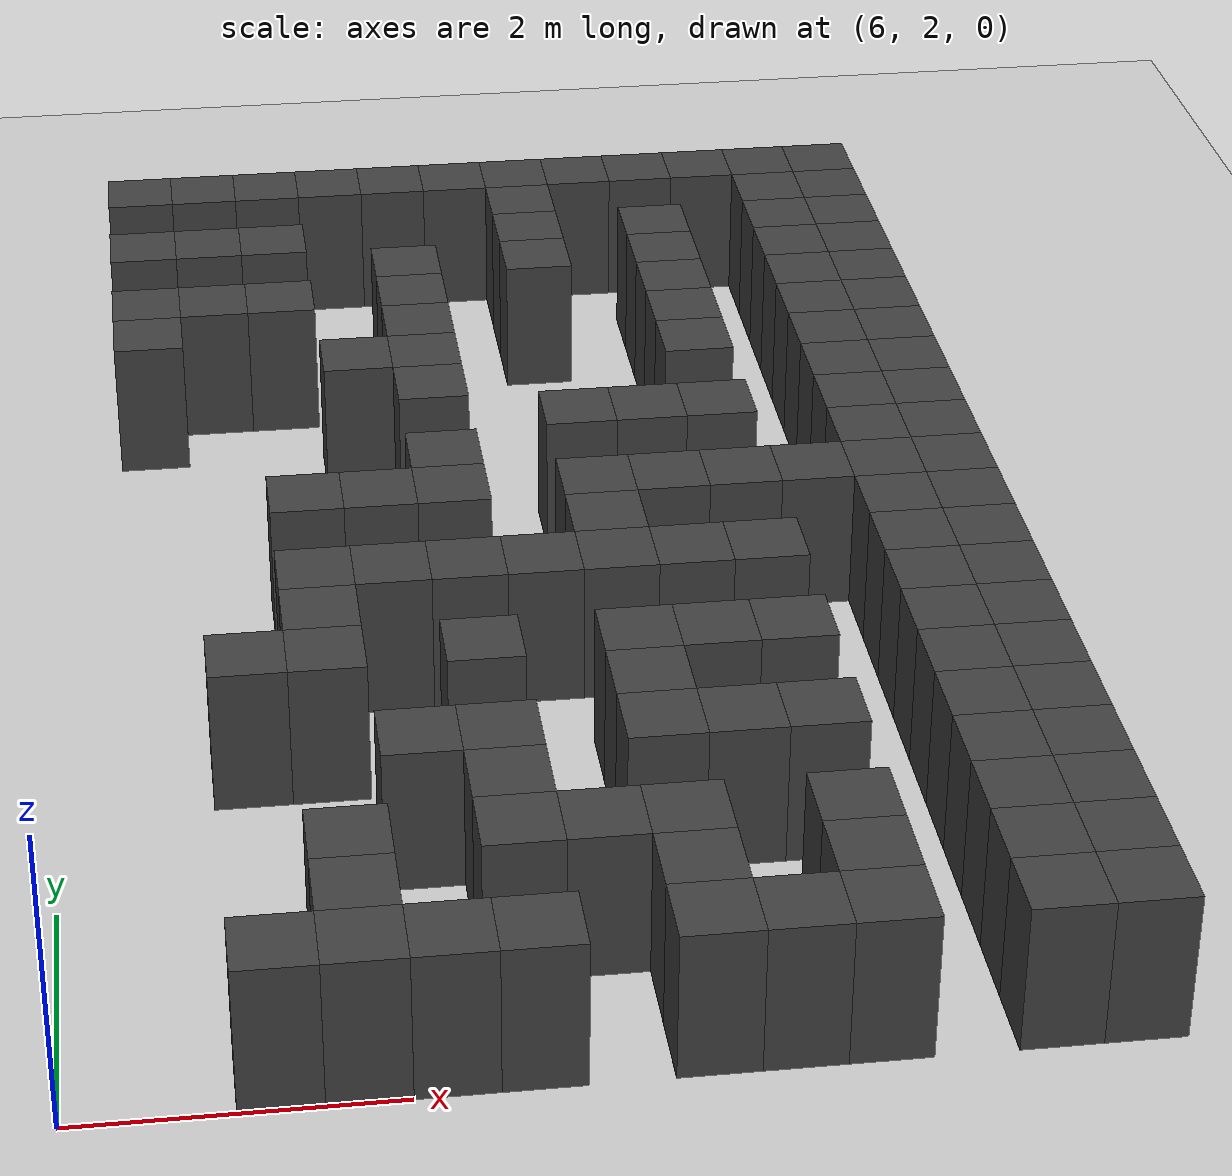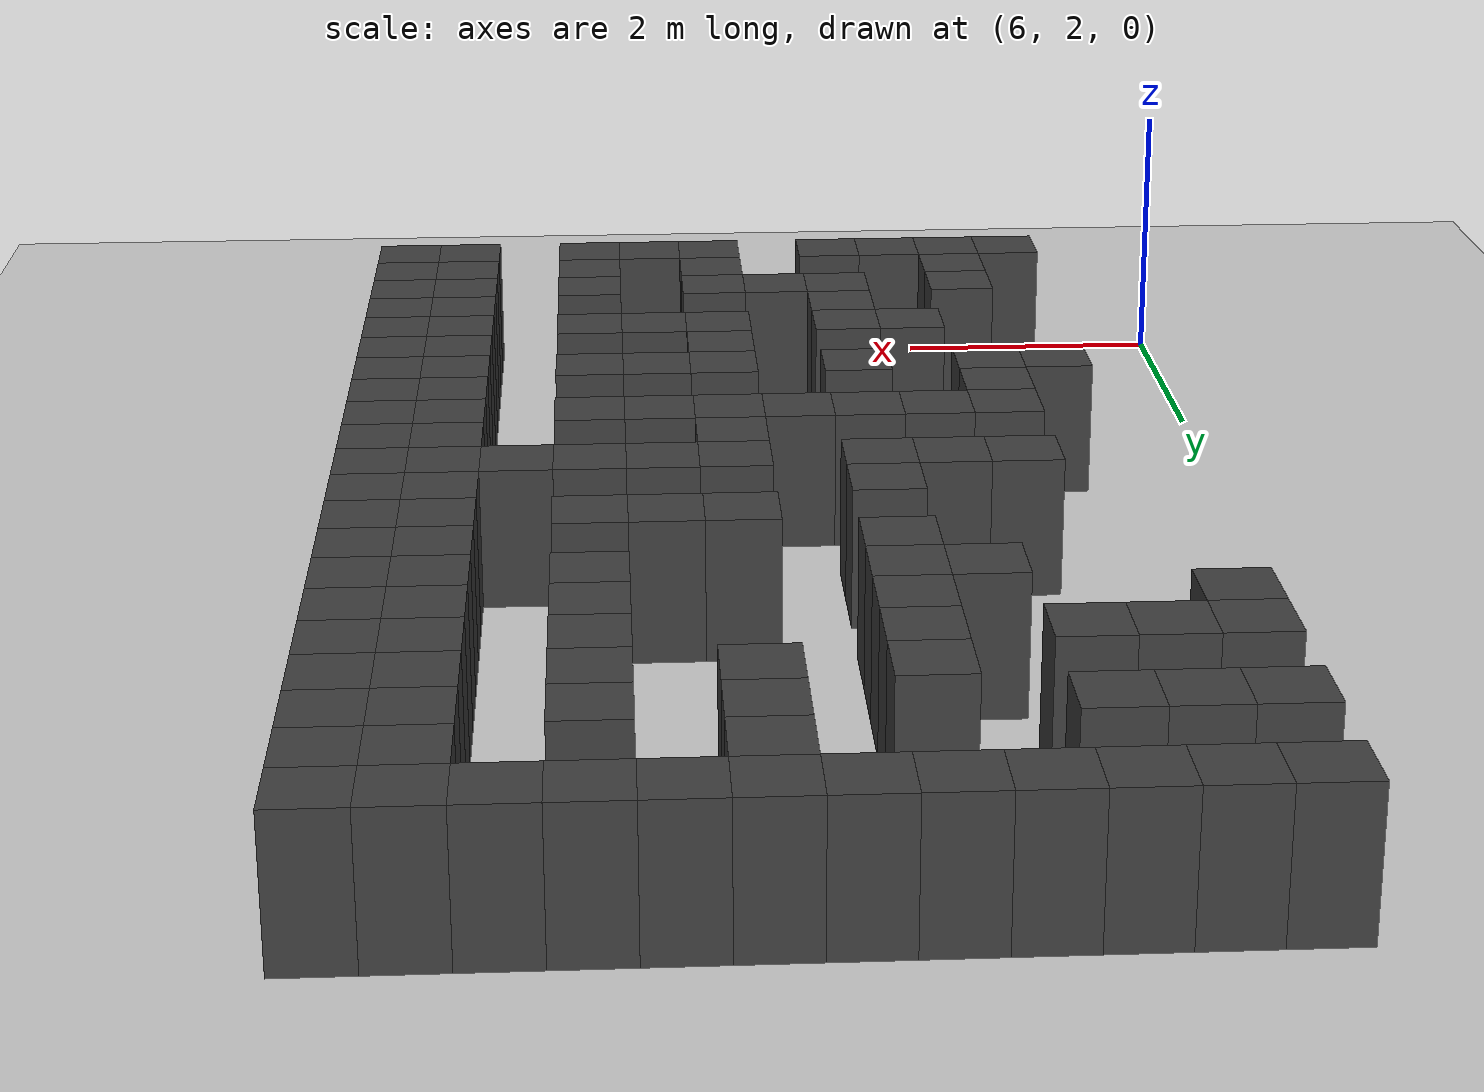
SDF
<sdf version="1.7">
 <world name="map_15497">
  <model name="ground_plane">
   <static>true</static>
   <link name="link">
    <collision name="collision">
     <geometry><plane><normal>0 0 1</normal><size>200 200</size></plane></geometry>
    </collision>
    <visual name="visual">
     <geometry><plane><normal>0 0 1</normal><size>200 200</size></plane></geometry>
     <material><ambient>0.8 0.8 0.8 1</ambient><diffuse>0.8 0.8 0.8 1</diffuse></material>
    </visual>
   </link>
  </model>
  <model name="maze_environment">
   <static>true</static>
   <link name="wall_38">
    <pose>6.750 12.250 0.500 0 0 0</pose>
    <collision name="col"><geometry><box><size>0.5 0.5 1.0</size></box></geometry></collision>
    <visual name="vis">
     <geometry><box><size>0.5 0.5 1.0</size></box></geometry>
     <material><ambient>0.15 0.15 0.15 1</ambient><diffuse>0.25 0.25 0.25 1</diffuse></material>
    </visual>
   </link>
   <link name="wall_39">
    <pose>7.250 12.250 0.500 0 0 0</pose>
    <collision name="col"><geometry><box><size>0.5 0.5 1.0</size></box></geometry></collision>
    <visual name="vis">
     <geometry><box><size>0.5 0.5 1.0</size></box></geometry>
     <material><ambient>0.15 0.15 0.15 1</ambient><diffuse>0.25 0.25 0.25 1</diffuse></material>
    </visual>
   </link>
   <link name="wall_40">
    <pose>7.750 12.250 0.500 0 0 0</pose>
    <collision name="col"><geometry><box><size>0.5 0.5 1.0</size></box></geometry></collision>
    <visual name="vis">
     <geometry><box><size>0.5 0.5 1.0</size></box></geometry>
     <material><ambient>0.15 0.15 0.15 1</ambient><diffuse>0.25 0.25 0.25 1</diffuse></material>
    </visual>
   </link>
   <link name="wall_41">
    <pose>8.250 12.250 0.500 0 0 0</pose>
    <collision name="col"><geometry><box><size>0.5 0.5 1.0</size></box></geometry></collision>
    <visual name="vis">
     <geometry><box><size>0.5 0.5 1.0</size></box></geometry>
     <material><ambient>0.15 0.15 0.15 1</ambient><diffuse>0.25 0.25 0.25 1</diffuse></material>
    </visual>
   </link>
   <link name="wall_42">
    <pose>8.750 12.250 0.500 0 0 0</pose>
    <collision name="col"><geometry><box><size>0.5 0.5 1.0</size></box></geometry></collision>
    <visual name="vis">
     <geometry><box><size>0.5 0.5 1.0</size></box></geometry>
     <material><ambient>0.15 0.15 0.15 1</ambient><diffuse>0.25 0.25 0.25 1</diffuse></material>
    </visual>
   </link>
   <link name="wall_43">
    <pose>9.250 12.250 0.500 0 0 0</pose>
    <collision name="col"><geometry><box><size>0.5 0.5 1.0</size></box></geometry></collision>
    <visual name="vis">
     <geometry><box><size>0.5 0.5 1.0</size></box></geometry>
     <material><ambient>0.15 0.15 0.15 1</ambient><diffuse>0.25 0.25 0.25 1</diffuse></material>
    </visual>
   </link>
   <link name="wall_44">
    <pose>9.750 12.250 0.500 0 0 0</pose>
    <collision name="col"><geometry><box><size>0.5 0.5 1.0</size></box></geometry></collision>
    <visual name="vis">
     <geometry><box><size>0.5 0.5 1.0</size></box></geometry>
     <material><ambient>0.15 0.15 0.15 1</ambient><diffuse>0.25 0.25 0.25 1</diffuse></material>
    </visual>
   </link>
   <link name="wall_45">
    <pose>10.250 12.250 0.500 0 0 0</pose>
    <collision name="col"><geometry><box><size>0.5 0.5 1.0</size></box></geometry></collision>
    <visual name="vis">
     <geometry><box><size>0.5 0.5 1.0</size></box></geometry>
     <material><ambient>0.15 0.15 0.15 1</ambient><diffuse>0.25 0.25 0.25 1</diffuse></material>
    </visual>
   </link>
   <link name="wall_46">
    <pose>10.750 12.250 0.500 0 0 0</pose>
    <collision name="col"><geometry><box><size>0.5 0.5 1.0</size></box></geometry></collision>
    <visual name="vis">
     <geometry><box><size>0.5 0.5 1.0</size></box></geometry>
     <material><ambient>0.15 0.15 0.15 1</ambient><diffuse>0.25 0.25 0.25 1</diffuse></material>
    </visual>
   </link>
   <link name="wall_47">
    <pose>11.250 12.250 0.500 0 0 0</pose>
    <collision name="col"><geometry><box><size>0.5 0.5 1.0</size></box></geometry></collision>
    <visual name="vis">
     <geometry><box><size>0.5 0.5 1.0</size></box></geometry>
     <material><ambient>0.15 0.15 0.15 1</ambient><diffuse>0.25 0.25 0.25 1</diffuse></material>
    </visual>
   </link>
   <link name="wall_48">
    <pose>11.750 12.250 0.500 0 0 0</pose>
    <collision name="col"><geometry><box><size>0.5 0.5 1.0</size></box></geometry></collision>
    <visual name="vis">
     <geometry><box><size>0.5 0.5 1.0</size></box></geometry>
     <material><ambient>0.15 0.15 0.15 1</ambient><diffuse>0.25 0.25 0.25 1</diffuse></material>
    </visual>
   </link>
   <link name="wall_49">
    <pose>12.250 12.250 0.500 0 0 0</pose>
    <collision name="col"><geometry><box><size>0.5 0.5 1.0</size></box></geometry></collision>
    <visual name="vis">
     <geometry><box><size>0.5 0.5 1.0</size></box></geometry>
     <material><ambient>0.15 0.15 0.15 1</ambient><diffuse>0.25 0.25 0.25 1</diffuse></material>
    </visual>
   </link>
   <link name="wall_56">
    <pose>9.750 11.750 0.500 0 0 0</pose>
    <collision name="col"><geometry><box><size>0.5 0.5 1.0</size></box></geometry></collision>
    <visual name="vis">
     <geometry><box><size>0.5 0.5 1.0</size></box></geometry>
     <material><ambient>0.15 0.15 0.15 1</ambient><diffuse>0.25 0.25 0.25 1</diffuse></material>
    </visual>
   </link>
   <link name="wall_57">
    <pose>11.750 11.750 0.500 0 0 0</pose>
    <collision name="col"><geometry><box><size>0.5 0.5 1.0</size></box></geometry></collision>
    <visual name="vis">
     <geometry><box><size>0.5 0.5 1.0</size></box></geometry>
     <material><ambient>0.15 0.15 0.15 1</ambient><diffuse>0.25 0.25 0.25 1</diffuse></material>
    </visual>
   </link>
   <link name="wall_58">
    <pose>12.250 11.750 0.500 0 0 0</pose>
    <collision name="col"><geometry><box><size>0.5 0.5 1.0</size></box></geometry></collision>
    <visual name="vis">
     <geometry><box><size>0.5 0.5 1.0</size></box></geometry>
     <material><ambient>0.15 0.15 0.15 1</ambient><diffuse>0.25 0.25 0.25 1</diffuse></material>
    </visual>
   </link>
   <link name="wall_84">
    <pose>6.750 11.250 0.500 0 0 0</pose>
    <collision name="col"><geometry><box><size>0.5 0.5 1.0</size></box></geometry></collision>
    <visual name="vis">
     <geometry><box><size>0.5 0.5 1.0</size></box></geometry>
     <material><ambient>0.15 0.15 0.15 1</ambient><diffuse>0.25 0.25 0.25 1</diffuse></material>
    </visual>
   </link>
   <link name="wall_85">
    <pose>7.250 11.250 0.500 0 0 0</pose>
    <collision name="col"><geometry><box><size>0.5 0.5 1.0</size></box></geometry></collision>
    <visual name="vis">
     <geometry><box><size>0.5 0.5 1.0</size></box></geometry>
     <material><ambient>0.15 0.15 0.15 1</ambient><diffuse>0.25 0.25 0.25 1</diffuse></material>
    </visual>
   </link>
   <link name="wall_86">
    <pose>7.750 11.250 0.500 0 0 0</pose>
    <collision name="col"><geometry><box><size>0.5 0.5 1.0</size></box></geometry></collision>
    <visual name="vis">
     <geometry><box><size>0.5 0.5 1.0</size></box></geometry>
     <material><ambient>0.15 0.15 0.15 1</ambient><diffuse>0.25 0.25 0.25 1</diffuse></material>
    </visual>
   </link>
   <link name="wall_87">
    <pose>9.750 11.250 0.500 0 0 0</pose>
    <collision name="col"><geometry><box><size>0.5 0.5 1.0</size></box></geometry></collision>
    <visual name="vis">
     <geometry><box><size>0.5 0.5 1.0</size></box></geometry>
     <material><ambient>0.15 0.15 0.15 1</ambient><diffuse>0.25 0.25 0.25 1</diffuse></material>
    </visual>
   </link>
   <link name="wall_88">
    <pose>10.750 11.250 0.500 0 0 0</pose>
    <collision name="col"><geometry><box><size>0.5 0.5 1.0</size></box></geometry></collision>
    <visual name="vis">
     <geometry><box><size>0.5 0.5 1.0</size></box></geometry>
     <material><ambient>0.15 0.15 0.15 1</ambient><diffuse>0.25 0.25 0.25 1</diffuse></material>
    </visual>
   </link>
   <link name="wall_89">
    <pose>11.750 11.250 0.500 0 0 0</pose>
    <collision name="col"><geometry><box><size>0.5 0.5 1.0</size></box></geometry></collision>
    <visual name="vis">
     <geometry><box><size>0.5 0.5 1.0</size></box></geometry>
     <material><ambient>0.15 0.15 0.15 1</ambient><diffuse>0.25 0.25 0.25 1</diffuse></material>
    </visual>
   </link>
   <link name="wall_90">
    <pose>12.250 11.250 0.500 0 0 0</pose>
    <collision name="col"><geometry><box><size>0.5 0.5 1.0</size></box></geometry></collision>
    <visual name="vis">
     <geometry><box><size>0.5 0.5 1.0</size></box></geometry>
     <material><ambient>0.15 0.15 0.15 1</ambient><diffuse>0.25 0.25 0.25 1</diffuse></material>
    </visual>
   </link>
   <link name="wall_100">
    <pose>8.750 10.750 0.500 0 0 0</pose>
    <collision name="col"><geometry><box><size>0.5 0.5 1.0</size></box></geometry></collision>
    <visual name="vis">
     <geometry><box><size>0.5 0.5 1.0</size></box></geometry>
     <material><ambient>0.15 0.15 0.15 1</ambient><diffuse>0.25 0.25 0.25 1</diffuse></material>
    </visual>
   </link>
   <link name="wall_101">
    <pose>9.750 10.750 0.500 0 0 0</pose>
    <collision name="col"><geometry><box><size>0.5 0.5 1.0</size></box></geometry></collision>
    <visual name="vis">
     <geometry><box><size>0.5 0.5 1.0</size></box></geometry>
     <material><ambient>0.15 0.15 0.15 1</ambient><diffuse>0.25 0.25 0.25 1</diffuse></material>
    </visual>
   </link>
   <link name="wall_102">
    <pose>10.750 10.750 0.500 0 0 0</pose>
    <collision name="col"><geometry><box><size>0.5 0.5 1.0</size></box></geometry></collision>
    <visual name="vis">
     <geometry><box><size>0.5 0.5 1.0</size></box></geometry>
     <material><ambient>0.15 0.15 0.15 1</ambient><diffuse>0.25 0.25 0.25 1</diffuse></material>
    </visual>
   </link>
   <link name="wall_103">
    <pose>11.750 10.750 0.500 0 0 0</pose>
    <collision name="col"><geometry><box><size>0.5 0.5 1.0</size></box></geometry></collision>
    <visual name="vis">
     <geometry><box><size>0.5 0.5 1.0</size></box></geometry>
     <material><ambient>0.15 0.15 0.15 1</ambient><diffuse>0.25 0.25 0.25 1</diffuse></material>
    </visual>
   </link>
   <link name="wall_104">
    <pose>12.250 10.750 0.500 0 0 0</pose>
    <collision name="col"><geometry><box><size>0.5 0.5 1.0</size></box></geometry></collision>
    <visual name="vis">
     <geometry><box><size>0.5 0.5 1.0</size></box></geometry>
     <material><ambient>0.15 0.15 0.15 1</ambient><diffuse>0.25 0.25 0.25 1</diffuse></material>
    </visual>
   </link>
   <link name="wall_131">
    <pose>6.750 10.250 0.500 0 0 0</pose>
    <collision name="col"><geometry><box><size>0.5 0.5 1.0</size></box></geometry></collision>
    <visual name="vis">
     <geometry><box><size>0.5 0.5 1.0</size></box></geometry>
     <material><ambient>0.15 0.15 0.15 1</ambient><diffuse>0.25 0.25 0.25 1</diffuse></material>
    </visual>
   </link>
   <link name="wall_132">
    <pose>7.250 10.250 0.500 0 0 0</pose>
    <collision name="col"><geometry><box><size>0.5 0.5 1.0</size></box></geometry></collision>
    <visual name="vis">
     <geometry><box><size>0.5 0.5 1.0</size></box></geometry>
     <material><ambient>0.15 0.15 0.15 1</ambient><diffuse>0.25 0.25 0.25 1</diffuse></material>
    </visual>
   </link>
   <link name="wall_133">
    <pose>7.750 10.250 0.500 0 0 0</pose>
    <collision name="col"><geometry><box><size>0.5 0.5 1.0</size></box></geometry></collision>
    <visual name="vis">
     <geometry><box><size>0.5 0.5 1.0</size></box></geometry>
     <material><ambient>0.15 0.15 0.15 1</ambient><diffuse>0.25 0.25 0.25 1</diffuse></material>
    </visual>
   </link>
   <link name="wall_134">
    <pose>8.750 10.250 0.500 0 0 0</pose>
    <collision name="col"><geometry><box><size>0.5 0.5 1.0</size></box></geometry></collision>
    <visual name="vis">
     <geometry><box><size>0.5 0.5 1.0</size></box></geometry>
     <material><ambient>0.15 0.15 0.15 1</ambient><diffuse>0.25 0.25 0.25 1</diffuse></material>
    </visual>
   </link>
   <link name="wall_135">
    <pose>10.750 10.250 0.500 0 0 0</pose>
    <collision name="col"><geometry><box><size>0.5 0.5 1.0</size></box></geometry></collision>
    <visual name="vis">
     <geometry><box><size>0.5 0.5 1.0</size></box></geometry>
     <material><ambient>0.15 0.15 0.15 1</ambient><diffuse>0.25 0.25 0.25 1</diffuse></material>
    </visual>
   </link>
   <link name="wall_136">
    <pose>11.750 10.250 0.500 0 0 0</pose>
    <collision name="col"><geometry><box><size>0.5 0.5 1.0</size></box></geometry></collision>
    <visual name="vis">
     <geometry><box><size>0.5 0.5 1.0</size></box></geometry>
     <material><ambient>0.15 0.15 0.15 1</ambient><diffuse>0.25 0.25 0.25 1</diffuse></material>
    </visual>
   </link>
   <link name="wall_137">
    <pose>12.250 10.250 0.500 0 0 0</pose>
    <collision name="col"><geometry><box><size>0.5 0.5 1.0</size></box></geometry></collision>
    <visual name="vis">
     <geometry><box><size>0.5 0.5 1.0</size></box></geometry>
     <material><ambient>0.15 0.15 0.15 1</ambient><diffuse>0.25 0.25 0.25 1</diffuse></material>
    </visual>
   </link>
   <link name="wall_145">
    <pose>6.750 9.750 0.500 0 0 0</pose>
    <collision name="col"><geometry><box><size>0.5 0.5 1.0</size></box></geometry></collision>
    <visual name="vis">
     <geometry><box><size>0.5 0.5 1.0</size></box></geometry>
     <material><ambient>0.15 0.15 0.15 1</ambient><diffuse>0.25 0.25 0.25 1</diffuse></material>
    </visual>
   </link>
   <link name="wall_146">
    <pose>8.750 9.750 0.500 0 0 0</pose>
    <collision name="col"><geometry><box><size>0.5 0.5 1.0</size></box></geometry></collision>
    <visual name="vis">
     <geometry><box><size>0.5 0.5 1.0</size></box></geometry>
     <material><ambient>0.15 0.15 0.15 1</ambient><diffuse>0.25 0.25 0.25 1</diffuse></material>
    </visual>
   </link>
   <link name="wall_147">
    <pose>10.750 9.750 0.500 0 0 0</pose>
    <collision name="col"><geometry><box><size>0.5 0.5 1.0</size></box></geometry></collision>
    <visual name="vis">
     <geometry><box><size>0.5 0.5 1.0</size></box></geometry>
     <material><ambient>0.15 0.15 0.15 1</ambient><diffuse>0.25 0.25 0.25 1</diffuse></material>
    </visual>
   </link>
   <link name="wall_148">
    <pose>11.750 9.750 0.500 0 0 0</pose>
    <collision name="col"><geometry><box><size>0.5 0.5 1.0</size></box></geometry></collision>
    <visual name="vis">
     <geometry><box><size>0.5 0.5 1.0</size></box></geometry>
     <material><ambient>0.15 0.15 0.15 1</ambient><diffuse>0.25 0.25 0.25 1</diffuse></material>
    </visual>
   </link>
   <link name="wall_149">
    <pose>12.250 9.750 0.500 0 0 0</pose>
    <collision name="col"><geometry><box><size>0.5 0.5 1.0</size></box></geometry></collision>
    <visual name="vis">
     <geometry><box><size>0.5 0.5 1.0</size></box></geometry>
     <material><ambient>0.15 0.15 0.15 1</ambient><diffuse>0.25 0.25 0.25 1</diffuse></material>
    </visual>
   </link>
   <link name="wall_178">
    <pose>8.250 9.250 0.500 0 0 0</pose>
    <collision name="col"><geometry><box><size>0.5 0.5 1.0</size></box></geometry></collision>
    <visual name="vis">
     <geometry><box><size>0.5 0.5 1.0</size></box></geometry>
     <material><ambient>0.15 0.15 0.15 1</ambient><diffuse>0.25 0.25 0.25 1</diffuse></material>
    </visual>
   </link>
   <link name="wall_179">
    <pose>8.750 9.250 0.500 0 0 0</pose>
    <collision name="col"><geometry><box><size>0.5 0.5 1.0</size></box></geometry></collision>
    <visual name="vis">
     <geometry><box><size>0.5 0.5 1.0</size></box></geometry>
     <material><ambient>0.15 0.15 0.15 1</ambient><diffuse>0.25 0.25 0.25 1</diffuse></material>
    </visual>
   </link>
   <link name="wall_180">
    <pose>10.750 9.250 0.500 0 0 0</pose>
    <collision name="col"><geometry><box><size>0.5 0.5 1.0</size></box></geometry></collision>
    <visual name="vis">
     <geometry><box><size>0.5 0.5 1.0</size></box></geometry>
     <material><ambient>0.15 0.15 0.15 1</ambient><diffuse>0.25 0.25 0.25 1</diffuse></material>
    </visual>
   </link>
   <link name="wall_181">
    <pose>11.750 9.250 0.500 0 0 0</pose>
    <collision name="col"><geometry><box><size>0.5 0.5 1.0</size></box></geometry></collision>
    <visual name="vis">
     <geometry><box><size>0.5 0.5 1.0</size></box></geometry>
     <material><ambient>0.15 0.15 0.15 1</ambient><diffuse>0.25 0.25 0.25 1</diffuse></material>
    </visual>
   </link>
   <link name="wall_182">
    <pose>12.250 9.250 0.500 0 0 0</pose>
    <collision name="col"><geometry><box><size>0.5 0.5 1.0</size></box></geometry></collision>
    <visual name="vis">
     <geometry><box><size>0.5 0.5 1.0</size></box></geometry>
     <material><ambient>0.15 0.15 0.15 1</ambient><diffuse>0.25 0.25 0.25 1</diffuse></material>
    </visual>
   </link>
   <link name="wall_192">
    <pose>8.750 8.750 0.500 0 0 0</pose>
    <collision name="col"><geometry><box><size>0.5 0.5 1.0</size></box></geometry></collision>
    <visual name="vis">
     <geometry><box><size>0.5 0.5 1.0</size></box></geometry>
     <material><ambient>0.15 0.15 0.15 1</ambient><diffuse>0.25 0.25 0.25 1</diffuse></material>
    </visual>
   </link>
   <link name="wall_193">
    <pose>11.750 8.750 0.500 0 0 0</pose>
    <collision name="col"><geometry><box><size>0.5 0.5 1.0</size></box></geometry></collision>
    <visual name="vis">
     <geometry><box><size>0.5 0.5 1.0</size></box></geometry>
     <material><ambient>0.15 0.15 0.15 1</ambient><diffuse>0.25 0.25 0.25 1</diffuse></material>
    </visual>
   </link>
   <link name="wall_194">
    <pose>12.250 8.750 0.500 0 0 0</pose>
    <collision name="col"><geometry><box><size>0.5 0.5 1.0</size></box></geometry></collision>
    <visual name="vis">
     <geometry><box><size>0.5 0.5 1.0</size></box></geometry>
     <material><ambient>0.15 0.15 0.15 1</ambient><diffuse>0.25 0.25 0.25 1</diffuse></material>
    </visual>
   </link>
   <link name="wall_223">
    <pose>9.750 8.250 0.500 0 0 0</pose>
    <collision name="col"><geometry><box><size>0.5 0.5 1.0</size></box></geometry></collision>
    <visual name="vis">
     <geometry><box><size>0.5 0.5 1.0</size></box></geometry>
     <material><ambient>0.15 0.15 0.15 1</ambient><diffuse>0.25 0.25 0.25 1</diffuse></material>
    </visual>
   </link>
   <link name="wall_224">
    <pose>10.250 8.250 0.500 0 0 0</pose>
    <collision name="col"><geometry><box><size>0.5 0.5 1.0</size></box></geometry></collision>
    <visual name="vis">
     <geometry><box><size>0.5 0.5 1.0</size></box></geometry>
     <material><ambient>0.15 0.15 0.15 1</ambient><diffuse>0.25 0.25 0.25 1</diffuse></material>
    </visual>
   </link>
   <link name="wall_225">
    <pose>10.750 8.250 0.500 0 0 0</pose>
    <collision name="col"><geometry><box><size>0.5 0.5 1.0</size></box></geometry></collision>
    <visual name="vis">
     <geometry><box><size>0.5 0.5 1.0</size></box></geometry>
     <material><ambient>0.15 0.15 0.15 1</ambient><diffuse>0.25 0.25 0.25 1</diffuse></material>
    </visual>
   </link>
   <link name="wall_226">
    <pose>11.750 8.250 0.500 0 0 0</pose>
    <collision name="col"><geometry><box><size>0.5 0.5 1.0</size></box></geometry></collision>
    <visual name="vis">
     <geometry><box><size>0.5 0.5 1.0</size></box></geometry>
     <material><ambient>0.15 0.15 0.15 1</ambient><diffuse>0.25 0.25 0.25 1</diffuse></material>
    </visual>
   </link>
   <link name="wall_227">
    <pose>12.250 8.250 0.500 0 0 0</pose>
    <collision name="col"><geometry><box><size>0.5 0.5 1.0</size></box></geometry></collision>
    <visual name="vis">
     <geometry><box><size>0.5 0.5 1.0</size></box></geometry>
     <material><ambient>0.15 0.15 0.15 1</ambient><diffuse>0.25 0.25 0.25 1</diffuse></material>
    </visual>
   </link>
   <link name="wall_236">
    <pose>8.750 7.750 0.500 0 0 0</pose>
    <collision name="col"><geometry><box><size>0.5 0.5 1.0</size></box></geometry></collision>
    <visual name="vis">
     <geometry><box><size>0.5 0.5 1.0</size></box></geometry>
     <material><ambient>0.15 0.15 0.15 1</ambient><diffuse>0.25 0.25 0.25 1</diffuse></material>
    </visual>
   </link>
   <link name="wall_237">
    <pose>11.750 7.750 0.500 0 0 0</pose>
    <collision name="col"><geometry><box><size>0.5 0.5 1.0</size></box></geometry></collision>
    <visual name="vis">
     <geometry><box><size>0.5 0.5 1.0</size></box></geometry>
     <material><ambient>0.15 0.15 0.15 1</ambient><diffuse>0.25 0.25 0.25 1</diffuse></material>
    </visual>
   </link>
   <link name="wall_238">
    <pose>12.250 7.750 0.500 0 0 0</pose>
    <collision name="col"><geometry><box><size>0.5 0.5 1.0</size></box></geometry></collision>
    <visual name="vis">
     <geometry><box><size>0.5 0.5 1.0</size></box></geometry>
     <material><ambient>0.15 0.15 0.15 1</ambient><diffuse>0.25 0.25 0.25 1</diffuse></material>
    </visual>
   </link>
   <link name="wall_264">
    <pose>7.750 7.250 0.500 0 0 0</pose>
    <collision name="col"><geometry><box><size>0.5 0.5 1.0</size></box></geometry></collision>
    <visual name="vis">
     <geometry><box><size>0.5 0.5 1.0</size></box></geometry>
     <material><ambient>0.15 0.15 0.15 1</ambient><diffuse>0.25 0.25 0.25 1</diffuse></material>
    </visual>
   </link>
   <link name="wall_265">
    <pose>8.250 7.250 0.500 0 0 0</pose>
    <collision name="col"><geometry><box><size>0.5 0.5 1.0</size></box></geometry></collision>
    <visual name="vis">
     <geometry><box><size>0.5 0.5 1.0</size></box></geometry>
     <material><ambient>0.15 0.15 0.15 1</ambient><diffuse>0.25 0.25 0.25 1</diffuse></material>
    </visual>
   </link>
   <link name="wall_266">
    <pose>8.750 7.250 0.500 0 0 0</pose>
    <collision name="col"><geometry><box><size>0.5 0.5 1.0</size></box></geometry></collision>
    <visual name="vis">
     <geometry><box><size>0.5 0.5 1.0</size></box></geometry>
     <material><ambient>0.15 0.15 0.15 1</ambient><diffuse>0.25 0.25 0.25 1</diffuse></material>
    </visual>
   </link>
   <link name="wall_267">
    <pose>9.750 7.250 0.500 0 0 0</pose>
    <collision name="col"><geometry><box><size>0.5 0.5 1.0</size></box></geometry></collision>
    <visual name="vis">
     <geometry><box><size>0.5 0.5 1.0</size></box></geometry>
     <material><ambient>0.15 0.15 0.15 1</ambient><diffuse>0.25 0.25 0.25 1</diffuse></material>
    </visual>
   </link>
   <link name="wall_268">
    <pose>10.250 7.250 0.500 0 0 0</pose>
    <collision name="col"><geometry><box><size>0.5 0.5 1.0</size></box></geometry></collision>
    <visual name="vis">
     <geometry><box><size>0.5 0.5 1.0</size></box></geometry>
     <material><ambient>0.15 0.15 0.15 1</ambient><diffuse>0.25 0.25 0.25 1</diffuse></material>
    </visual>
   </link>
   <link name="wall_269">
    <pose>10.750 7.250 0.500 0 0 0</pose>
    <collision name="col"><geometry><box><size>0.5 0.5 1.0</size></box></geometry></collision>
    <visual name="vis">
     <geometry><box><size>0.5 0.5 1.0</size></box></geometry>
     <material><ambient>0.15 0.15 0.15 1</ambient><diffuse>0.25 0.25 0.25 1</diffuse></material>
    </visual>
   </link>
   <link name="wall_270">
    <pose>11.250 7.250 0.500 0 0 0</pose>
    <collision name="col"><geometry><box><size>0.5 0.5 1.0</size></box></geometry></collision>
    <visual name="vis">
     <geometry><box><size>0.5 0.5 1.0</size></box></geometry>
     <material><ambient>0.15 0.15 0.15 1</ambient><diffuse>0.25 0.25 0.25 1</diffuse></material>
    </visual>
   </link>
   <link name="wall_271">
    <pose>11.750 7.250 0.500 0 0 0</pose>
    <collision name="col"><geometry><box><size>0.5 0.5 1.0</size></box></geometry></collision>
    <visual name="vis">
     <geometry><box><size>0.5 0.5 1.0</size></box></geometry>
     <material><ambient>0.15 0.15 0.15 1</ambient><diffuse>0.25 0.25 0.25 1</diffuse></material>
    </visual>
   </link>
   <link name="wall_272">
    <pose>12.250 7.250 0.500 0 0 0</pose>
    <collision name="col"><geometry><box><size>0.5 0.5 1.0</size></box></geometry></collision>
    <visual name="vis">
     <geometry><box><size>0.5 0.5 1.0</size></box></geometry>
     <material><ambient>0.15 0.15 0.15 1</ambient><diffuse>0.25 0.25 0.25 1</diffuse></material>
    </visual>
   </link>
   <link name="wall_280">
    <pose>9.750 6.750 0.500 0 0 0</pose>
    <collision name="col"><geometry><box><size>0.5 0.5 1.0</size></box></geometry></collision>
    <visual name="vis">
     <geometry><box><size>0.5 0.5 1.0</size></box></geometry>
     <material><ambient>0.15 0.15 0.15 1</ambient><diffuse>0.25 0.25 0.25 1</diffuse></material>
    </visual>
   </link>
   <link name="wall_281">
    <pose>11.750 6.750 0.500 0 0 0</pose>
    <collision name="col"><geometry><box><size>0.5 0.5 1.0</size></box></geometry></collision>
    <visual name="vis">
     <geometry><box><size>0.5 0.5 1.0</size></box></geometry>
     <material><ambient>0.15 0.15 0.15 1</ambient><diffuse>0.25 0.25 0.25 1</diffuse></material>
    </visual>
   </link>
   <link name="wall_282">
    <pose>12.250 6.750 0.500 0 0 0</pose>
    <collision name="col"><geometry><box><size>0.5 0.5 1.0</size></box></geometry></collision>
    <visual name="vis">
     <geometry><box><size>0.5 0.5 1.0</size></box></geometry>
     <material><ambient>0.15 0.15 0.15 1</ambient><diffuse>0.25 0.25 0.25 1</diffuse></material>
    </visual>
   </link>
   <link name="wall_312">
    <pose>7.750 6.250 0.500 0 0 0</pose>
    <collision name="col"><geometry><box><size>0.5 0.5 1.0</size></box></geometry></collision>
    <visual name="vis">
     <geometry><box><size>0.5 0.5 1.0</size></box></geometry>
     <material><ambient>0.15 0.15 0.15 1</ambient><diffuse>0.25 0.25 0.25 1</diffuse></material>
    </visual>
   </link>
   <link name="wall_313">
    <pose>8.250 6.250 0.500 0 0 0</pose>
    <collision name="col"><geometry><box><size>0.5 0.5 1.0</size></box></geometry></collision>
    <visual name="vis">
     <geometry><box><size>0.5 0.5 1.0</size></box></geometry>
     <material><ambient>0.15 0.15 0.15 1</ambient><diffuse>0.25 0.25 0.25 1</diffuse></material>
    </visual>
   </link>
   <link name="wall_314">
    <pose>8.750 6.250 0.500 0 0 0</pose>
    <collision name="col"><geometry><box><size>0.5 0.5 1.0</size></box></geometry></collision>
    <visual name="vis">
     <geometry><box><size>0.5 0.5 1.0</size></box></geometry>
     <material><ambient>0.15 0.15 0.15 1</ambient><diffuse>0.25 0.25 0.25 1</diffuse></material>
    </visual>
   </link>
   <link name="wall_315">
    <pose>9.250 6.250 0.500 0 0 0</pose>
    <collision name="col"><geometry><box><size>0.5 0.5 1.0</size></box></geometry></collision>
    <visual name="vis">
     <geometry><box><size>0.5 0.5 1.0</size></box></geometry>
     <material><ambient>0.15 0.15 0.15 1</ambient><diffuse>0.25 0.25 0.25 1</diffuse></material>
    </visual>
   </link>
   <link name="wall_316">
    <pose>9.750 6.250 0.500 0 0 0</pose>
    <collision name="col"><geometry><box><size>0.5 0.5 1.0</size></box></geometry></collision>
    <visual name="vis">
     <geometry><box><size>0.5 0.5 1.0</size></box></geometry>
     <material><ambient>0.15 0.15 0.15 1</ambient><diffuse>0.25 0.25 0.25 1</diffuse></material>
    </visual>
   </link>
   <link name="wall_317">
    <pose>10.250 6.250 0.500 0 0 0</pose>
    <collision name="col"><geometry><box><size>0.5 0.5 1.0</size></box></geometry></collision>
    <visual name="vis">
     <geometry><box><size>0.5 0.5 1.0</size></box></geometry>
     <material><ambient>0.15 0.15 0.15 1</ambient><diffuse>0.25 0.25 0.25 1</diffuse></material>
    </visual>
   </link>
   <link name="wall_318">
    <pose>10.750 6.250 0.500 0 0 0</pose>
    <collision name="col"><geometry><box><size>0.5 0.5 1.0</size></box></geometry></collision>
    <visual name="vis">
     <geometry><box><size>0.5 0.5 1.0</size></box></geometry>
     <material><ambient>0.15 0.15 0.15 1</ambient><diffuse>0.25 0.25 0.25 1</diffuse></material>
    </visual>
   </link>
   <link name="wall_319">
    <pose>11.750 6.250 0.500 0 0 0</pose>
    <collision name="col"><geometry><box><size>0.5 0.5 1.0</size></box></geometry></collision>
    <visual name="vis">
     <geometry><box><size>0.5 0.5 1.0</size></box></geometry>
     <material><ambient>0.15 0.15 0.15 1</ambient><diffuse>0.25 0.25 0.25 1</diffuse></material>
    </visual>
   </link>
   <link name="wall_320">
    <pose>12.250 6.250 0.500 0 0 0</pose>
    <collision name="col"><geometry><box><size>0.5 0.5 1.0</size></box></geometry></collision>
    <visual name="vis">
     <geometry><box><size>0.5 0.5 1.0</size></box></geometry>
     <material><ambient>0.15 0.15 0.15 1</ambient><diffuse>0.25 0.25 0.25 1</diffuse></material>
    </visual>
   </link>
   <link name="wall_330">
    <pose>7.750 5.750 0.500 0 0 0</pose>
    <collision name="col"><geometry><box><size>0.5 0.5 1.0</size></box></geometry></collision>
    <visual name="vis">
     <geometry><box><size>0.5 0.5 1.0</size></box></geometry>
     <material><ambient>0.15 0.15 0.15 1</ambient><diffuse>0.25 0.25 0.25 1</diffuse></material>
    </visual>
   </link>
   <link name="wall_331">
    <pose>11.750 5.750 0.500 0 0 0</pose>
    <collision name="col"><geometry><box><size>0.5 0.5 1.0</size></box></geometry></collision>
    <visual name="vis">
     <geometry><box><size>0.5 0.5 1.0</size></box></geometry>
     <material><ambient>0.15 0.15 0.15 1</ambient><diffuse>0.25 0.25 0.25 1</diffuse></material>
    </visual>
   </link>
   <link name="wall_332">
    <pose>12.250 5.750 0.500 0 0 0</pose>
    <collision name="col"><geometry><box><size>0.5 0.5 1.0</size></box></geometry></collision>
    <visual name="vis">
     <geometry><box><size>0.5 0.5 1.0</size></box></geometry>
     <material><ambient>0.15 0.15 0.15 1</ambient><diffuse>0.25 0.25 0.25 1</diffuse></material>
    </visual>
   </link>
   <link name="wall_359">
    <pose>7.250 5.250 0.500 0 0 0</pose>
    <collision name="col"><geometry><box><size>0.5 0.5 1.0</size></box></geometry></collision>
    <visual name="vis">
     <geometry><box><size>0.5 0.5 1.0</size></box></geometry>
     <material><ambient>0.15 0.15 0.15 1</ambient><diffuse>0.25 0.25 0.25 1</diffuse></material>
    </visual>
   </link>
   <link name="wall_360">
    <pose>7.750 5.250 0.500 0 0 0</pose>
    <collision name="col"><geometry><box><size>0.5 0.5 1.0</size></box></geometry></collision>
    <visual name="vis">
     <geometry><box><size>0.5 0.5 1.0</size></box></geometry>
     <material><ambient>0.15 0.15 0.15 1</ambient><diffuse>0.25 0.25 0.25 1</diffuse></material>
    </visual>
   </link>
   <link name="wall_361">
    <pose>8.750 5.250 0.500 0 0 0</pose>
    <collision name="col"><geometry><box><size>0.5 0.5 1.0</size></box></geometry></collision>
    <visual name="vis">
     <geometry><box><size>0.5 0.5 1.0</size></box></geometry>
     <material><ambient>0.15 0.15 0.15 1</ambient><diffuse>0.25 0.25 0.25 1</diffuse></material>
    </visual>
   </link>
   <link name="wall_362">
    <pose>9.750 5.250 0.500 0 0 0</pose>
    <collision name="col"><geometry><box><size>0.5 0.5 1.0</size></box></geometry></collision>
    <visual name="vis">
     <geometry><box><size>0.5 0.5 1.0</size></box></geometry>
     <material><ambient>0.15 0.15 0.15 1</ambient><diffuse>0.25 0.25 0.25 1</diffuse></material>
    </visual>
   </link>
   <link name="wall_363">
    <pose>10.250 5.250 0.500 0 0 0</pose>
    <collision name="col"><geometry><box><size>0.5 0.5 1.0</size></box></geometry></collision>
    <visual name="vis">
     <geometry><box><size>0.5 0.5 1.0</size></box></geometry>
     <material><ambient>0.15 0.15 0.15 1</ambient><diffuse>0.25 0.25 0.25 1</diffuse></material>
    </visual>
   </link>
   <link name="wall_364">
    <pose>10.750 5.250 0.500 0 0 0</pose>
    <collision name="col"><geometry><box><size>0.5 0.5 1.0</size></box></geometry></collision>
    <visual name="vis">
     <geometry><box><size>0.5 0.5 1.0</size></box></geometry>
     <material><ambient>0.15 0.15 0.15 1</ambient><diffuse>0.25 0.25 0.25 1</diffuse></material>
    </visual>
   </link>
   <link name="wall_365">
    <pose>11.750 5.250 0.500 0 0 0</pose>
    <collision name="col"><geometry><box><size>0.5 0.5 1.0</size></box></geometry></collision>
    <visual name="vis">
     <geometry><box><size>0.5 0.5 1.0</size></box></geometry>
     <material><ambient>0.15 0.15 0.15 1</ambient><diffuse>0.25 0.25 0.25 1</diffuse></material>
    </visual>
   </link>
   <link name="wall_366">
    <pose>12.250 5.250 0.500 0 0 0</pose>
    <collision name="col"><geometry><box><size>0.5 0.5 1.0</size></box></geometry></collision>
    <visual name="vis">
     <geometry><box><size>0.5 0.5 1.0</size></box></geometry>
     <material><ambient>0.15 0.15 0.15 1</ambient><diffuse>0.25 0.25 0.25 1</diffuse></material>
    </visual>
   </link>
   <link name="wall_376">
    <pose>9.750 4.750 0.500 0 0 0</pose>
    <collision name="col"><geometry><box><size>0.5 0.5 1.0</size></box></geometry></collision>
    <visual name="vis">
     <geometry><box><size>0.5 0.5 1.0</size></box></geometry>
     <material><ambient>0.15 0.15 0.15 1</ambient><diffuse>0.25 0.25 0.25 1</diffuse></material>
    </visual>
   </link>
   <link name="wall_377">
    <pose>11.750 4.750 0.500 0 0 0</pose>
    <collision name="col"><geometry><box><size>0.5 0.5 1.0</size></box></geometry></collision>
    <visual name="vis">
     <geometry><box><size>0.5 0.5 1.0</size></box></geometry>
     <material><ambient>0.15 0.15 0.15 1</ambient><diffuse>0.25 0.25 0.25 1</diffuse></material>
    </visual>
   </link>
   <link name="wall_378">
    <pose>12.250 4.750 0.500 0 0 0</pose>
    <collision name="col"><geometry><box><size>0.5 0.5 1.0</size></box></geometry></collision>
    <visual name="vis">
     <geometry><box><size>0.5 0.5 1.0</size></box></geometry>
     <material><ambient>0.15 0.15 0.15 1</ambient><diffuse>0.25 0.25 0.25 1</diffuse></material>
    </visual>
   </link>
   <link name="wall_402">
    <pose>8.250 4.250 0.500 0 0 0</pose>
    <collision name="col"><geometry><box><size>0.5 0.5 1.0</size></box></geometry></collision>
    <visual name="vis">
     <geometry><box><size>0.5 0.5 1.0</size></box></geometry>
     <material><ambient>0.15 0.15 0.15 1</ambient><diffuse>0.25 0.25 0.25 1</diffuse></material>
    </visual>
   </link>
   <link name="wall_403">
    <pose>8.750 4.250 0.500 0 0 0</pose>
    <collision name="col"><geometry><box><size>0.5 0.5 1.0</size></box></geometry></collision>
    <visual name="vis">
     <geometry><box><size>0.5 0.5 1.0</size></box></geometry>
     <material><ambient>0.15 0.15 0.15 1</ambient><diffuse>0.25 0.25 0.25 1</diffuse></material>
    </visual>
   </link>
   <link name="wall_404">
    <pose>9.750 4.250 0.500 0 0 0</pose>
    <collision name="col"><geometry><box><size>0.5 0.5 1.0</size></box></geometry></collision>
    <visual name="vis">
     <geometry><box><size>0.5 0.5 1.0</size></box></geometry>
     <material><ambient>0.15 0.15 0.15 1</ambient><diffuse>0.25 0.25 0.25 1</diffuse></material>
    </visual>
   </link>
   <link name="wall_405">
    <pose>10.250 4.250 0.500 0 0 0</pose>
    <collision name="col"><geometry><box><size>0.5 0.5 1.0</size></box></geometry></collision>
    <visual name="vis">
     <geometry><box><size>0.5 0.5 1.0</size></box></geometry>
     <material><ambient>0.15 0.15 0.15 1</ambient><diffuse>0.25 0.25 0.25 1</diffuse></material>
    </visual>
   </link>
   <link name="wall_406">
    <pose>10.750 4.250 0.500 0 0 0</pose>
    <collision name="col"><geometry><box><size>0.5 0.5 1.0</size></box></geometry></collision>
    <visual name="vis">
     <geometry><box><size>0.5 0.5 1.0</size></box></geometry>
     <material><ambient>0.15 0.15 0.15 1</ambient><diffuse>0.25 0.25 0.25 1</diffuse></material>
    </visual>
   </link>
   <link name="wall_407">
    <pose>11.750 4.250 0.500 0 0 0</pose>
    <collision name="col"><geometry><box><size>0.5 0.5 1.0</size></box></geometry></collision>
    <visual name="vis">
     <geometry><box><size>0.5 0.5 1.0</size></box></geometry>
     <material><ambient>0.15 0.15 0.15 1</ambient><diffuse>0.25 0.25 0.25 1</diffuse></material>
    </visual>
   </link>
   <link name="wall_408">
    <pose>12.250 4.250 0.500 0 0 0</pose>
    <collision name="col"><geometry><box><size>0.5 0.5 1.0</size></box></geometry></collision>
    <visual name="vis">
     <geometry><box><size>0.5 0.5 1.0</size></box></geometry>
     <material><ambient>0.15 0.15 0.15 1</ambient><diffuse>0.25 0.25 0.25 1</diffuse></material>
    </visual>
   </link>
   <link name="wall_416">
    <pose>8.750 3.750 0.500 0 0 0</pose>
    <collision name="col"><geometry><box><size>0.5 0.5 1.0</size></box></geometry></collision>
    <visual name="vis">
     <geometry><box><size>0.5 0.5 1.0</size></box></geometry>
     <material><ambient>0.15 0.15 0.15 1</ambient><diffuse>0.25 0.25 0.25 1</diffuse></material>
    </visual>
   </link>
   <link name="wall_417">
    <pose>11.750 3.750 0.500 0 0 0</pose>
    <collision name="col"><geometry><box><size>0.5 0.5 1.0</size></box></geometry></collision>
    <visual name="vis">
     <geometry><box><size>0.5 0.5 1.0</size></box></geometry>
     <material><ambient>0.15 0.15 0.15 1</ambient><diffuse>0.25 0.25 0.25 1</diffuse></material>
    </visual>
   </link>
   <link name="wall_418">
    <pose>12.250 3.750 0.500 0 0 0</pose>
    <collision name="col"><geometry><box><size>0.5 0.5 1.0</size></box></geometry></collision>
    <visual name="vis">
     <geometry><box><size>0.5 0.5 1.0</size></box></geometry>
     <material><ambient>0.15 0.15 0.15 1</ambient><diffuse>0.25 0.25 0.25 1</diffuse></material>
    </visual>
   </link>
   <link name="wall_442">
    <pose>7.750 3.250 0.500 0 0 0</pose>
    <collision name="col"><geometry><box><size>0.5 0.5 1.0</size></box></geometry></collision>
    <visual name="vis">
     <geometry><box><size>0.5 0.5 1.0</size></box></geometry>
     <material><ambient>0.15 0.15 0.15 1</ambient><diffuse>0.25 0.25 0.25 1</diffuse></material>
    </visual>
   </link>
   <link name="wall_443">
    <pose>8.750 3.250 0.500 0 0 0</pose>
    <collision name="col"><geometry><box><size>0.5 0.5 1.0</size></box></geometry></collision>
    <visual name="vis">
     <geometry><box><size>0.5 0.5 1.0</size></box></geometry>
     <material><ambient>0.15 0.15 0.15 1</ambient><diffuse>0.25 0.25 0.25 1</diffuse></material>
    </visual>
   </link>
   <link name="wall_444">
    <pose>9.250 3.250 0.500 0 0 0</pose>
    <collision name="col"><geometry><box><size>0.5 0.5 1.0</size></box></geometry></collision>
    <visual name="vis">
     <geometry><box><size>0.5 0.5 1.0</size></box></geometry>
     <material><ambient>0.15 0.15 0.15 1</ambient><diffuse>0.25 0.25 0.25 1</diffuse></material>
    </visual>
   </link>
   <link name="wall_445">
    <pose>9.750 3.250 0.500 0 0 0</pose>
    <collision name="col"><geometry><box><size>0.5 0.5 1.0</size></box></geometry></collision>
    <visual name="vis">
     <geometry><box><size>0.5 0.5 1.0</size></box></geometry>
     <material><ambient>0.15 0.15 0.15 1</ambient><diffuse>0.25 0.25 0.25 1</diffuse></material>
    </visual>
   </link>
   <link name="wall_446">
    <pose>10.750 3.250 0.500 0 0 0</pose>
    <collision name="col"><geometry><box><size>0.5 0.5 1.0</size></box></geometry></collision>
    <visual name="vis">
     <geometry><box><size>0.5 0.5 1.0</size></box></geometry>
     <material><ambient>0.15 0.15 0.15 1</ambient><diffuse>0.25 0.25 0.25 1</diffuse></material>
    </visual>
   </link>
   <link name="wall_447">
    <pose>11.750 3.250 0.500 0 0 0</pose>
    <collision name="col"><geometry><box><size>0.5 0.5 1.0</size></box></geometry></collision>
    <visual name="vis">
     <geometry><box><size>0.5 0.5 1.0</size></box></geometry>
     <material><ambient>0.15 0.15 0.15 1</ambient><diffuse>0.25 0.25 0.25 1</diffuse></material>
    </visual>
   </link>
   <link name="wall_448">
    <pose>12.250 3.250 0.500 0 0 0</pose>
    <collision name="col"><geometry><box><size>0.5 0.5 1.0</size></box></geometry></collision>
    <visual name="vis">
     <geometry><box><size>0.5 0.5 1.0</size></box></geometry>
     <material><ambient>0.15 0.15 0.15 1</ambient><diffuse>0.25 0.25 0.25 1</diffuse></material>
    </visual>
   </link>
   <link name="wall_460">
    <pose>7.750 2.750 0.500 0 0 0</pose>
    <collision name="col"><geometry><box><size>0.5 0.5 1.0</size></box></geometry></collision>
    <visual name="vis">
     <geometry><box><size>0.5 0.5 1.0</size></box></geometry>
     <material><ambient>0.15 0.15 0.15 1</ambient><diffuse>0.25 0.25 0.25 1</diffuse></material>
    </visual>
   </link>
   <link name="wall_461">
    <pose>9.750 2.750 0.500 0 0 0</pose>
    <collision name="col"><geometry><box><size>0.5 0.5 1.0</size></box></geometry></collision>
    <visual name="vis">
     <geometry><box><size>0.5 0.5 1.0</size></box></geometry>
     <material><ambient>0.15 0.15 0.15 1</ambient><diffuse>0.25 0.25 0.25 1</diffuse></material>
    </visual>
   </link>
   <link name="wall_462">
    <pose>10.750 2.750 0.500 0 0 0</pose>
    <collision name="col"><geometry><box><size>0.5 0.5 1.0</size></box></geometry></collision>
    <visual name="vis">
     <geometry><box><size>0.5 0.5 1.0</size></box></geometry>
     <material><ambient>0.15 0.15 0.15 1</ambient><diffuse>0.25 0.25 0.25 1</diffuse></material>
    </visual>
   </link>
   <link name="wall_463">
    <pose>11.750 2.750 0.500 0 0 0</pose>
    <collision name="col"><geometry><box><size>0.5 0.5 1.0</size></box></geometry></collision>
    <visual name="vis">
     <geometry><box><size>0.5 0.5 1.0</size></box></geometry>
     <material><ambient>0.15 0.15 0.15 1</ambient><diffuse>0.25 0.25 0.25 1</diffuse></material>
    </visual>
   </link>
   <link name="wall_464">
    <pose>12.250 2.750 0.500 0 0 0</pose>
    <collision name="col"><geometry><box><size>0.5 0.5 1.0</size></box></geometry></collision>
    <visual name="vis">
     <geometry><box><size>0.5 0.5 1.0</size></box></geometry>
     <material><ambient>0.15 0.15 0.15 1</ambient><diffuse>0.25 0.25 0.25 1</diffuse></material>
    </visual>
   </link>
   <link name="wall_488">
    <pose>7.250 2.250 0.500 0 0 0</pose>
    <collision name="col"><geometry><box><size>0.5 0.5 1.0</size></box></geometry></collision>
    <visual name="vis">
     <geometry><box><size>0.5 0.5 1.0</size></box></geometry>
     <material><ambient>0.15 0.15 0.15 1</ambient><diffuse>0.25 0.25 0.25 1</diffuse></material>
    </visual>
   </link>
   <link name="wall_489">
    <pose>7.750 2.250 0.500 0 0 0</pose>
    <collision name="col"><geometry><box><size>0.5 0.5 1.0</size></box></geometry></collision>
    <visual name="vis">
     <geometry><box><size>0.5 0.5 1.0</size></box></geometry>
     <material><ambient>0.15 0.15 0.15 1</ambient><diffuse>0.25 0.25 0.25 1</diffuse></material>
    </visual>
   </link>
   <link name="wall_490">
    <pose>8.250 2.250 0.500 0 0 0</pose>
    <collision name="col"><geometry><box><size>0.5 0.5 1.0</size></box></geometry></collision>
    <visual name="vis">
     <geometry><box><size>0.5 0.5 1.0</size></box></geometry>
     <material><ambient>0.15 0.15 0.15 1</ambient><diffuse>0.25 0.25 0.25 1</diffuse></material>
    </visual>
   </link>
   <link name="wall_491">
    <pose>8.750 2.250 0.500 0 0 0</pose>
    <collision name="col"><geometry><box><size>0.5 0.5 1.0</size></box></geometry></collision>
    <visual name="vis">
     <geometry><box><size>0.5 0.5 1.0</size></box></geometry>
     <material><ambient>0.15 0.15 0.15 1</ambient><diffuse>0.25 0.25 0.25 1</diffuse></material>
    </visual>
   </link>
   <link name="wall_492">
    <pose>9.750 2.250 0.500 0 0 0</pose>
    <collision name="col"><geometry><box><size>0.5 0.5 1.0</size></box></geometry></collision>
    <visual name="vis">
     <geometry><box><size>0.5 0.5 1.0</size></box></geometry>
     <material><ambient>0.15 0.15 0.15 1</ambient><diffuse>0.25 0.25 0.25 1</diffuse></material>
    </visual>
   </link>
   <link name="wall_493">
    <pose>10.250 2.250 0.500 0 0 0</pose>
    <collision name="col"><geometry><box><size>0.5 0.5 1.0</size></box></geometry></collision>
    <visual name="vis">
     <geometry><box><size>0.5 0.5 1.0</size></box></geometry>
     <material><ambient>0.15 0.15 0.15 1</ambient><diffuse>0.25 0.25 0.25 1</diffuse></material>
    </visual>
   </link>
   <link name="wall_494">
    <pose>10.750 2.250 0.500 0 0 0</pose>
    <collision name="col"><geometry><box><size>0.5 0.5 1.0</size></box></geometry></collision>
    <visual name="vis">
     <geometry><box><size>0.5 0.5 1.0</size></box></geometry>
     <material><ambient>0.15 0.15 0.15 1</ambient><diffuse>0.25 0.25 0.25 1</diffuse></material>
    </visual>
   </link>
   <link name="wall_495">
    <pose>11.750 2.250 0.500 0 0 0</pose>
    <collision name="col"><geometry><box><size>0.5 0.5 1.0</size></box></geometry></collision>
    <visual name="vis">
     <geometry><box><size>0.5 0.5 1.0</size></box></geometry>
     <material><ambient>0.15 0.15 0.15 1</ambient><diffuse>0.25 0.25 0.25 1</diffuse></material>
    </visual>
   </link>
   <link name="wall_496">
    <pose>12.250 2.250 0.500 0 0 0</pose>
    <collision name="col"><geometry><box><size>0.5 0.5 1.0</size></box></geometry></collision>
    <visual name="vis">
     <geometry><box><size>0.5 0.5 1.0</size></box></geometry>
     <material><ambient>0.15 0.15 0.15 1</ambient><diffuse>0.25 0.25 0.25 1</diffuse></material>
    </visual>
   </link>
  </model>
 </world>
</sdf>
